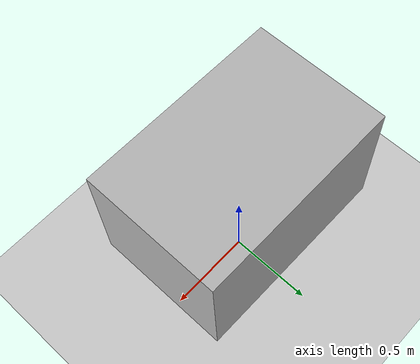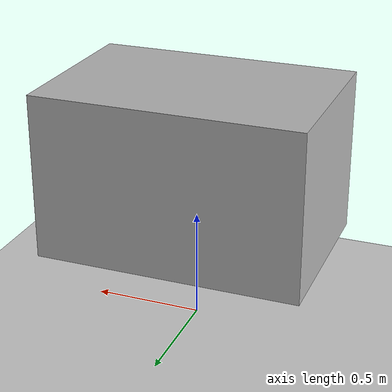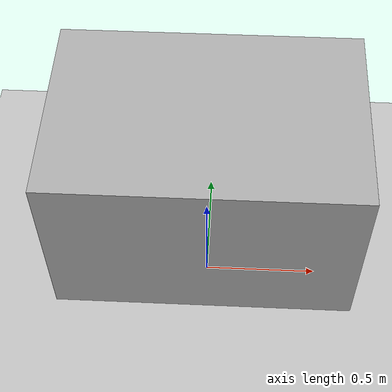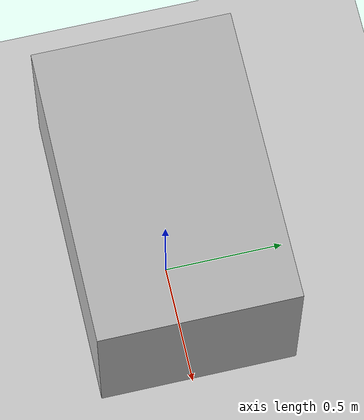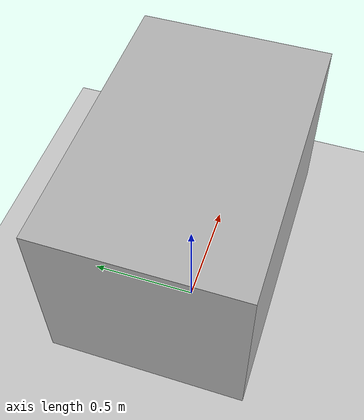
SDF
<sdf version="1.9">
  <world name="demo_world">

    <!-- Physics -->
    <physics type="ignition">
      <max_step_size>0.001</max_step_size>
      <real_time_factor>1.0</real_time_factor>
    </physics>

    <!-- Light so Foxglove can render -->
    <light type="directional" name="sun">
      <direction>-0.5 0.5 -1</direction>
    </light>

    <!-- Floor -->
    <model name="floor">
      <static>true</static>
      <link name="link">
        <collision name="collision">
          <geometry>
            <plane>
              <normal>0 0 1</normal>
              <size>10 10</size>
            </plane>
          </geometry>
        </collision>
        <visual name="visual">
          <geometry>
            <plane>
              <normal>0 0 1</normal>
              <size>10 10</size>
            </plane>
          </geometry>
        </visual>
      </link>
      <plugin filename="gz-sim-pose-publisher-system" name="gz::sim::systems::PosePublisher">
        <use_pose_vector_msg>true</use_pose_vector_msg>
        <publish_link_pose>true</publish_link_pose>
        <publish_model_pose>true</publish_model_pose>
      </plugin>
    </model>

    <!-- Table -->
    <model name="table">
      <static>true</static>
      <pose>0 0 0.75 0 0 0</pose>
      <link name="link">
        <collision name="collision">
          <geometry>
            <box>
              <size>1.2 0.8 0.75</size>
            </box>
          </geometry>
        </collision>
        <visual name="visual">
          <geometry>
            <box>
              <size>1.2 0.8 0.75</size>
            </box>
          </geometry>
        </visual>
      </link>

      <plugin filename="gz-sim-pose-publisher-system" name="gz::sim::systems::PosePublisher">
        <use_pose_vector_msg>true</use_pose_vector_msg>
        <publish_link_pose>true</publish_link_pose>
        <publish_model_pose>true</publish_model_pose>
      </plugin>

    </model>

  </world>
</sdf>
